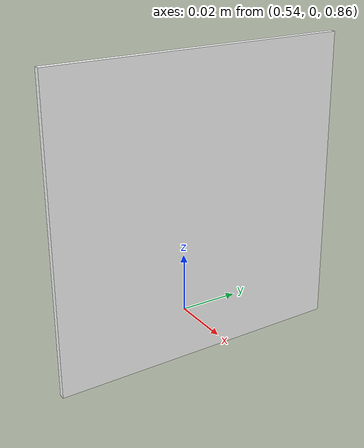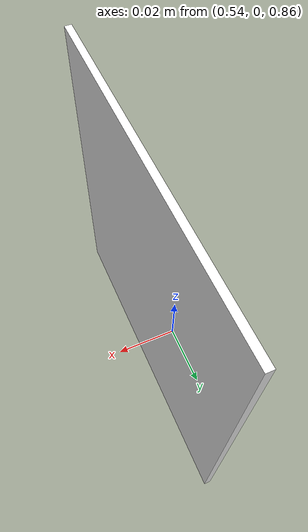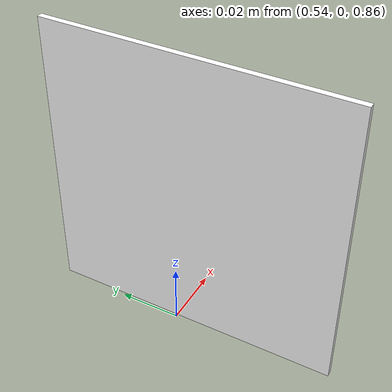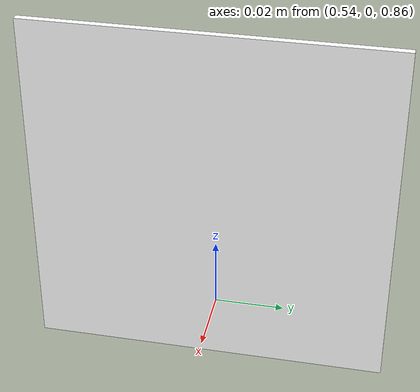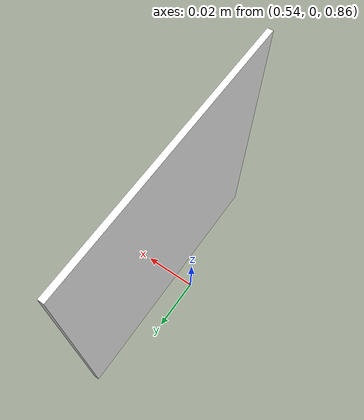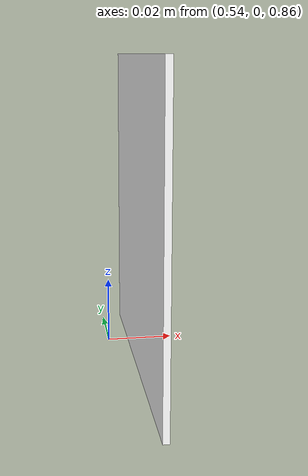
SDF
<?xml version="1.0" ?>
<sdf version="1.8">
  <world name="calibration_world">

    <scene>
      <ambient>1.0 1.0 1.0 1.0</ambient>
    </scene>

    <!-- 地面 -->
    <model name="ground">
      <static>true</static>
      <link name="link">
        <collision name="collision">
          <geometry><plane><normal>0 0 1</normal><size>10 10</size></plane></geometry>
        </collision>
        <visual name="visual">
          <geometry><plane><normal>0 0 1</normal><size>10 10</size></plane></geometry>
          <material><ambient>0.5 0.5 0.5 1</ambient><diffuse>0.5 0.5 0.5 1</diffuse></material>
        </visual>
      </link>
    </model>

    <!-- 灯光 -->
    <light type="directional" name="sun">
      <diffuse>1 1 1 1</diffuse>
      <specular>0.1 0.1 0.1 1</specular>
      <direction>0 -0.5 -1</direction>
    </light>

    <!-- ✅ 这里改成 ArUco 标记板（ID=2，0.1m 尺寸） -->
    <include>
      <uri>model://aruco_board</uri>
      <pose>0.55 0 0.9 0 0 1.5708</pose>
    </include>

    <gravity>0 0 0</gravity>

    <scene>
        <ambient>1.0 1.0 1.0 1.0</ambient>
    </scene>

  </world>
</sdf>

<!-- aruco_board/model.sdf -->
<sdf version="1.8">
  <model name="aruco_board">
    <static>true</static>
    <link name="board">
      <visual name="board_visual">
        <geometry><box><size>0.1 0.002 0.1</size></box></geometry>
        <material>
          <diffuse>1.0 1.0 1.0 1.0</diffuse>
          <pbr>
            <metal>
              <albedo_map>model://aruco_board/materials/textures/aruco_2.png</albedo_map>
            </metal>
          </pbr>
        </material>
      </visual>
      <collision name="board_collision">
        <geometry><box><size>0.1 0.002 0.1</size></box></geometry>
      </collision>
    </link>
  </model>
</sdf>
